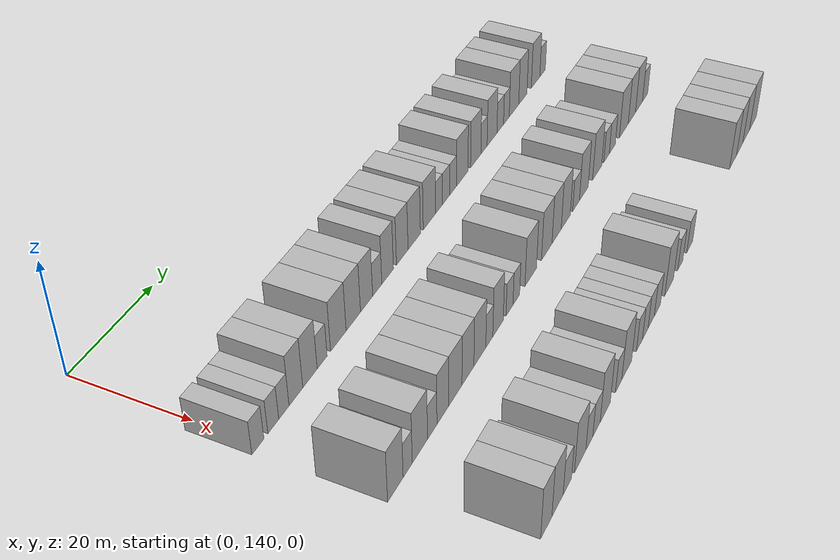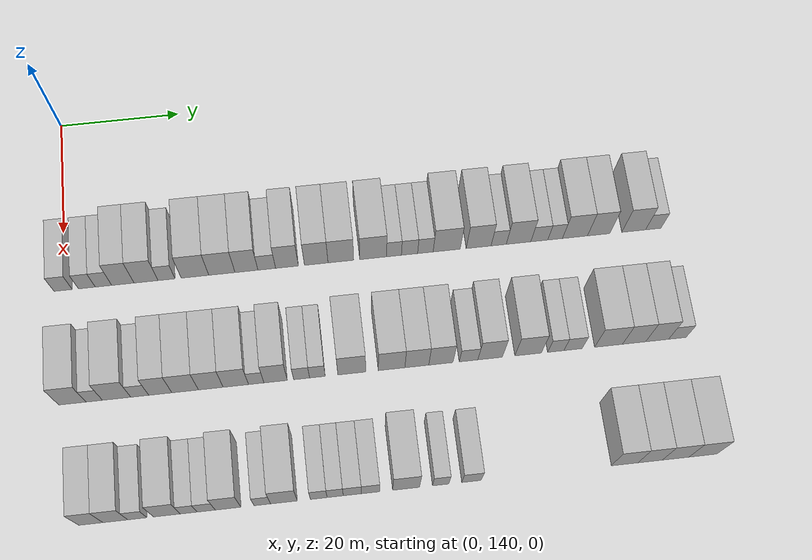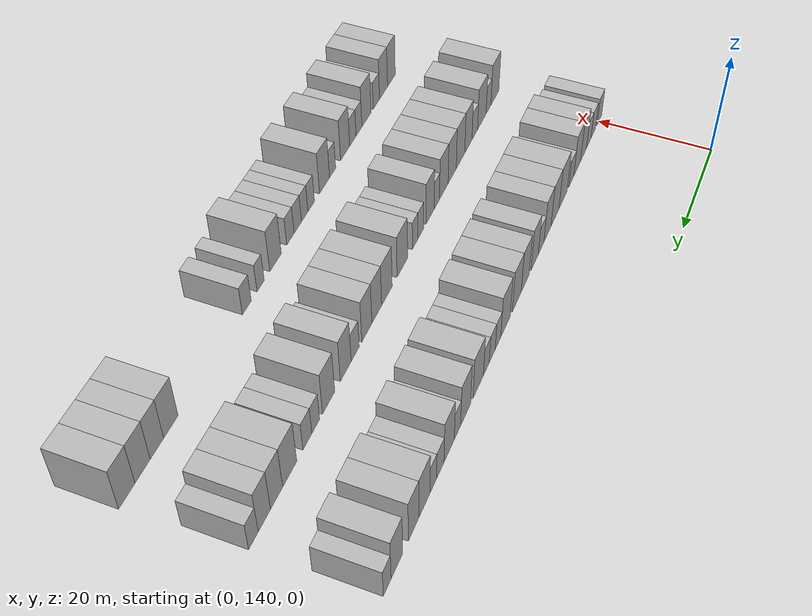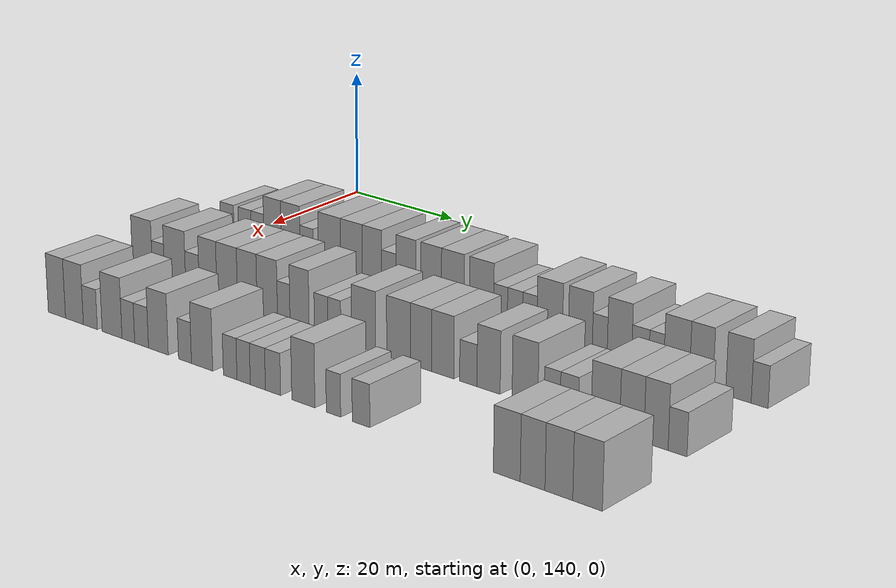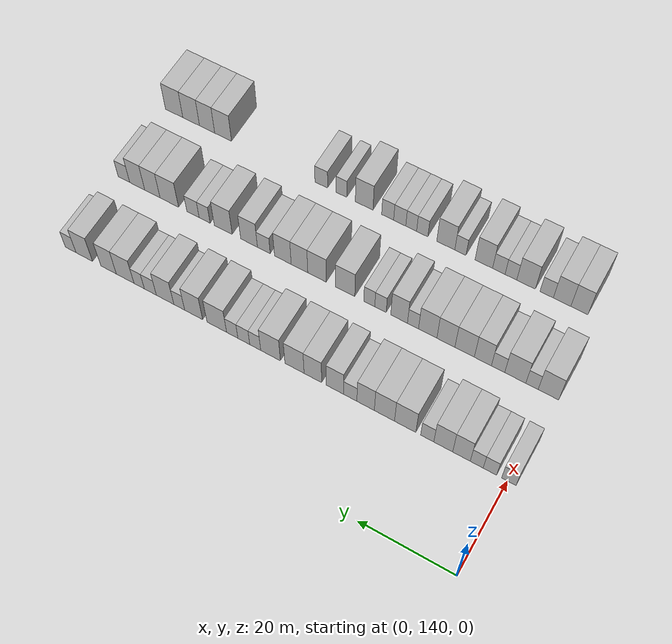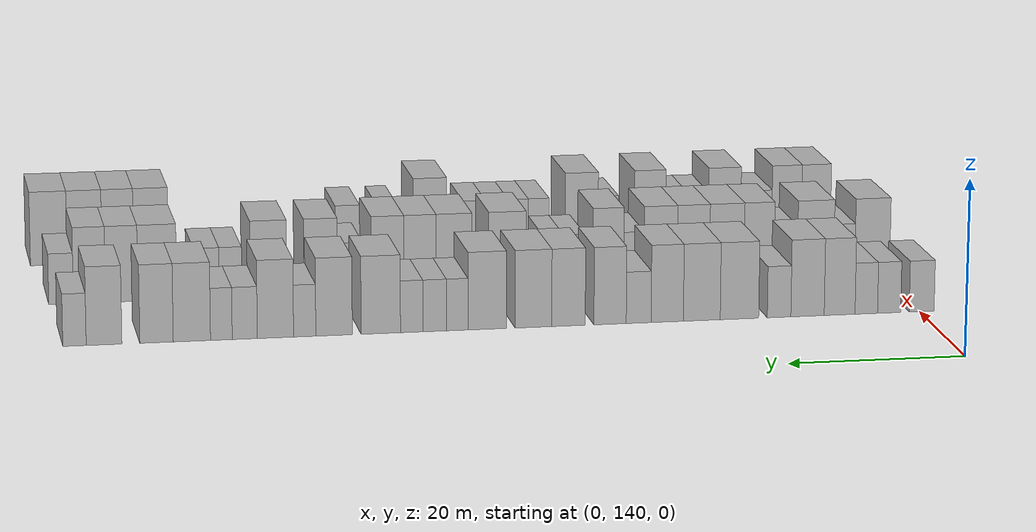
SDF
<sdf version="1.6">
 <world name="default">
  <model name="building_98">
   <static>1</static>
   <pose>25.0000 139.7400 0 0.000000 0.000000 0.000000</pose>
   <link name="link">
    <pose>0 0 3.00 0 0 0</pose>
    <collision name="collision"><geometry><box><size>10.0000 2.9340 6.0000</size></box></geometry></collision>
    <visual name="visual">
     <cast_shadows>0</cast_shadows>
     <geometry><box><size>10.0000 2.9340 6.0000</size></box></geometry>
     <material>
      <script>
       <uri>model://HANNAS_wall/materials/scripts</uri>
       <uri>model://HANNAS_wall/materials/textures</uri>
       <name>vrc/HANNAS_wall</name>
      </script>
     </material>
    </visual>
   </link>
  </model>
  <model name="building_99">
   <static>1</static>
   <pose>25.0000 143.5701 0 0.000000 0.000000 0.000000</pose>
   <link name="link">
    <pose>0 0 3.00 0 0 0</pose>
    <collision name="collision"><geometry><box><size>10.0000 2.7263 6.0000</size></box></geometry></collision>
    <visual name="visual">
     <cast_shadows>0</cast_shadows>
     <geometry><box><size>10.0000 2.7263 6.0000</size></box></geometry>
     <material>
      <script>
       <uri>model://HANNAS_wall/materials/scripts</uri>
       <uri>model://HANNAS_wall/materials/textures</uri>
       <name>vrc/HANNAS_wall</name>
      </script>
     </material>
    </visual>
   </link>
  </model>
  <model name="building_100">
   <static>1</static>
   <pose>25.0000 146.2547 0 0.000000 0.000000 0.000000</pose>
   <link name="link">
    <pose>0 0 3.00 0 0 0</pose>
    <collision name="collision"><geometry><box><size>10.0000 2.6428 6.0000</size></box></geometry></collision>
    <visual name="visual">
     <cast_shadows>0</cast_shadows>
     <geometry><box><size>10.0000 2.6428 6.0000</size></box></geometry>
     <material>
      <script>
       <uri>model://HANNAS_wall/materials/scripts</uri>
       <uri>model://HANNAS_wall/materials/textures</uri>
       <name>vrc/HANNAS_wall</name>
      </script>
     </material>
    </visual>
   </link>
  </model>
  <model name="building_101">
   <static>1</static>
   <pose>25.0000 149.3836 0 0.000000 0.000000 0.000000</pose>
   <link name="link">
    <pose>0 0 4.50 0 0 0</pose>
    <collision name="collision"><geometry><box><size>10.0000 3.6149 9.0000</size></box></geometry></collision>
    <visual name="visual">
     <cast_shadows>0</cast_shadows>
     <geometry><box><size>10.0000 3.6149 9.0000</size></box></geometry>
     <material>
      <script>
       <uri>model://HANNAS_wall/materials/scripts</uri>
       <uri>model://HANNAS_wall/materials/textures</uri>
       <name>vrc/HANNAS_wall</name>
      </script>
     </material>
    </visual>
   </link>
  </model>
  <model name="building_102">
   <static>1</static>
   <pose>25.0000 153.1405 0 0.000000 0.000000 0.000000</pose>
   <link name="link">
    <pose>0 0 4.50 0 0 0</pose>
    <collision name="collision"><geometry><box><size>10.0000 3.8989 9.0000</size></box></geometry></collision>
    <visual name="visual">
     <cast_shadows>0</cast_shadows>
     <geometry><box><size>10.0000 3.8989 9.0000</size></box></geometry>
     <material>
      <script>
       <uri>model://HANNAS_wall/materials/scripts</uri>
       <uri>model://HANNAS_wall/materials/textures</uri>
       <name>vrc/HANNAS_wall</name>
      </script>
     </material>
    </visual>
   </link>
  </model>
  <model name="building_103">
   <static>1</static>
   <pose>25.0000 156.4654 0 0.000000 0.000000 0.000000</pose>
   <link name="link">
    <pose>0 0 3.00 0 0 0</pose>
    <collision name="collision"><geometry><box><size>10.0000 2.7508 6.0000</size></box></geometry></collision>
    <visual name="visual">
     <cast_shadows>0</cast_shadows>
     <geometry><box><size>10.0000 2.7508 6.0000</size></box></geometry>
     <material>
      <script>
       <uri>model://HANNAS_wall/materials/scripts</uri>
       <uri>model://HANNAS_wall/materials/textures</uri>
       <name>vrc/HANNAS_wall</name>
      </script>
     </material>
    </visual>
   </link>
  </model>
  <model name="building_104">
   <static>1</static>
   <pose>25.0000 161.0789 0 0.000000 0.000000 0.000000</pose>
   <link name="link">
    <pose>0 0 4.50 0 0 0</pose>
    <collision name="collision"><geometry><box><size>10.0000 4.4762 9.0000</size></box></geometry></collision>
    <visual name="visual">
     <cast_shadows>0</cast_shadows>
     <geometry><box><size>10.0000 4.4762 9.0000</size></box></geometry>
     <material>
      <script>
       <uri>model://HANNAS_wall/materials/scripts</uri>
       <uri>model://HANNAS_wall/materials/textures</uri>
       <name>vrc/HANNAS_wall</name>
      </script>
     </material>
    </visual>
   </link>
  </model>
  <model name="building_105">
   <static>1</static>
   <pose>25.0000 165.4565 0 0.000000 0.000000 0.000000</pose>
   <link name="link">
    <pose>0 0 4.50 0 0 0</pose>
    <collision name="collision"><geometry><box><size>10.0000 4.2791 9.0000</size></box></geometry></collision>
    <visual name="visual">
     <cast_shadows>0</cast_shadows>
     <geometry><box><size>10.0000 4.2791 9.0000</size></box></geometry>
     <material>
      <script>
       <uri>model://HANNAS_wall/materials/scripts</uri>
       <uri>model://HANNAS_wall/materials/textures</uri>
       <name>vrc/HANNAS_wall</name>
      </script>
     </material>
    </visual>
   </link>
  </model>
  <model name="building_106">
   <static>1</static>
   <pose>25.0000 169.4659 0 0.000000 0.000000 0.000000</pose>
   <link name="link">
    <pose>0 0 4.50 0 0 0</pose>
    <collision name="collision"><geometry><box><size>10.0000 3.7397 9.0000</size></box></geometry></collision>
    <visual name="visual">
     <cast_shadows>0</cast_shadows>
     <geometry><box><size>10.0000 3.7397 9.0000</size></box></geometry>
     <material>
      <script>
       <uri>model://HANNAS_wall/materials/scripts</uri>
       <uri>model://HANNAS_wall/materials/textures</uri>
       <name>vrc/HANNAS_wall</name>
      </script>
     </material>
    </visual>
   </link>
  </model>
  <model name="building_107">
   <static>1</static>
   <pose>25.0000 172.7728 0 0.000000 0.000000 0.000000</pose>
   <link name="link">
    <pose>0 0 3.00 0 0 0</pose>
    <collision name="collision"><geometry><box><size>10.0000 2.8741 6.0000</size></box></geometry></collision>
    <visual name="visual">
     <cast_shadows>0</cast_shadows>
     <geometry><box><size>10.0000 2.8741 6.0000</size></box></geometry>
     <material>
      <script>
       <uri>model://HANNAS_wall/materials/scripts</uri>
       <uri>model://HANNAS_wall/materials/textures</uri>
       <name>vrc/HANNAS_wall</name>
      </script>
     </material>
    </visual>
   </link>
  </model>
  <model name="building_108">
   <static>1</static>
   <pose>25.0000 176.0724 0 0.000000 0.000000 0.000000</pose>
   <link name="link">
    <pose>0 0 4.50 0 0 0</pose>
    <collision name="collision"><geometry><box><size>10.0000 3.7249 9.0000</size></box></geometry></collision>
    <visual name="visual">
     <cast_shadows>0</cast_shadows>
     <geometry><box><size>10.0000 3.7249 9.0000</size></box></geometry>
     <material>
      <script>
       <uri>model://HANNAS_wall/materials/scripts</uri>
       <uri>model://HANNAS_wall/materials/textures</uri>
       <name>vrc/HANNAS_wall</name>
      </script>
     </material>
    </visual>
   </link>
  </model>
  <model name="building_109">
   <static>1</static>
   <pose>25.0000 180.8610 0 0.000000 0.000000 0.000000</pose>
   <link name="link">
    <pose>0 0 4.50 0 0 0</pose>
    <collision name="collision"><geometry><box><size>10.0000 3.8525 9.0000</size></box></geometry></collision>
    <visual name="visual">
     <cast_shadows>0</cast_shadows>
     <geometry><box><size>10.0000 3.8525 9.0000</size></box></geometry>
     <material>
      <script>
       <uri>model://HANNAS_wall/materials/scripts</uri>
       <uri>model://HANNAS_wall/materials/textures</uri>
       <name>vrc/HANNAS_wall</name>
      </script>
     </material>
    </visual>
   </link>
  </model>
  <model name="building_110">
   <static>1</static>
   <pose>25.0000 184.8941 0 0.000000 0.000000 0.000000</pose>
   <link name="link">
    <pose>0 0 4.50 0 0 0</pose>
    <collision name="collision"><geometry><box><size>10.0000 4.2136 9.0000</size></box></geometry></collision>
    <visual name="visual">
     <cast_shadows>0</cast_shadows>
     <geometry><box><size>10.0000 4.2136 9.0000</size></box></geometry>
     <material>
      <script>
       <uri>model://HANNAS_wall/materials/scripts</uri>
       <uri>model://HANNAS_wall/materials/textures</uri>
       <name>vrc/HANNAS_wall</name>
      </script>
     </material>
    </visual>
   </link>
  </model>
  <model name="building_111">
   <static>1</static>
   <pose>25.0000 190.1941 0 0.000000 0.000000 0.000000</pose>
   <link name="link">
    <pose>0 0 4.50 0 0 0</pose>
    <collision name="collision"><geometry><box><size>10.0000 4.3864 9.0000</size></box></geometry></collision>
    <visual name="visual">
     <cast_shadows>0</cast_shadows>
     <geometry><box><size>10.0000 4.3864 9.0000</size></box></geometry>
     <material>
      <script>
       <uri>model://HANNAS_wall/materials/scripts</uri>
       <uri>model://HANNAS_wall/materials/textures</uri>
       <name>vrc/HANNAS_wall</name>
      </script>
     </material>
    </visual>
   </link>
  </model>
  <model name="building_112">
   <static>1</static>
   <pose>25.0000 193.6153 0 0.000000 0.000000 0.000000</pose>
   <link name="link">
    <pose>0 0 3.00 0 0 0</pose>
    <collision name="collision"><geometry><box><size>10.0000 2.4560 6.0000</size></box></geometry></collision>
    <visual name="visual">
     <cast_shadows>0</cast_shadows>
     <geometry><box><size>10.0000 2.4560 6.0000</size></box></geometry>
     <material>
      <script>
       <uri>model://HANNAS_wall/materials/scripts</uri>
       <uri>model://HANNAS_wall/materials/textures</uri>
       <name>vrc/HANNAS_wall</name>
      </script>
     </material>
    </visual>
   </link>
  </model>
  <model name="building_113">
   <static>1</static>
   <pose>25.0000 196.1807 0 0.000000 0.000000 0.000000</pose>
   <link name="link">
    <pose>0 0 3.00 0 0 0</pose>
    <collision name="collision"><geometry><box><size>10.0000 2.6749 6.0000</size></box></geometry></collision>
    <visual name="visual">
     <cast_shadows>0</cast_shadows>
     <geometry><box><size>10.0000 2.6749 6.0000</size></box></geometry>
     <material>
      <script>
       <uri>model://HANNAS_wall/materials/scripts</uri>
       <uri>model://HANNAS_wall/materials/textures</uri>
       <name>vrc/HANNAS_wall</name>
      </script>
     </material>
    </visual>
   </link>
  </model>
  <model name="building_114">
   <static>1</static>
   <pose>25.0000 198.7943 0 0.000000 0.000000 0.000000</pose>
   <link name="link">
    <pose>0 0 3.00 0 0 0</pose>
    <collision name="collision"><geometry><box><size>10.0000 2.5523 6.0000</size></box></geometry></collision>
    <visual name="visual">
     <cast_shadows>0</cast_shadows>
     <geometry><box><size>10.0000 2.5523 6.0000</size></box></geometry>
     <material>
      <script>
       <uri>model://HANNAS_wall/materials/scripts</uri>
       <uri>model://HANNAS_wall/materials/textures</uri>
       <name>vrc/HANNAS_wall</name>
      </script>
     </material>
    </visual>
   </link>
  </model>
  <model name="building_115">
   <static>1</static>
   <pose>25.0000 202.3037 0 0.000000 0.000000 0.000000</pose>
   <link name="link">
    <pose>0 0 4.50 0 0 0</pose>
    <collision name="collision"><geometry><box><size>10.0000 4.4665 9.0000</size></box></geometry></collision>
    <visual name="visual">
     <cast_shadows>0</cast_shadows>
     <geometry><box><size>10.0000 4.4665 9.0000</size></box></geometry>
     <material>
      <script>
       <uri>model://HANNAS_wall/materials/scripts</uri>
       <uri>model://HANNAS_wall/materials/textures</uri>
       <name>vrc/HANNAS_wall</name>
      </script>
     </material>
    </visual>
   </link>
  </model>
  <model name="building_116">
   <static>1</static>
   <pose>25.0000 207.5986 0 0.000000 0.000000 0.000000</pose>
   <link name="link">
    <pose>0 0 4.50 0 0 0</pose>
    <collision name="collision"><geometry><box><size>10.0000 4.1233 9.0000</size></box></geometry></collision>
    <visual name="visual">
     <cast_shadows>0</cast_shadows>
     <geometry><box><size>10.0000 4.1233 9.0000</size></box></geometry>
     <material>
      <script>
       <uri>model://HANNAS_wall/materials/scripts</uri>
       <uri>model://HANNAS_wall/materials/textures</uri>
       <name>vrc/HANNAS_wall</name>
      </script>
     </material>
    </visual>
   </link>
  </model>
  <model name="building_117">
   <static>1</static>
   <pose>25.0000 210.9185 0 0.000000 0.000000 0.000000</pose>
   <link name="link">
    <pose>0 0 3.00 0 0 0</pose>
    <collision name="collision"><geometry><box><size>10.0000 2.5166 6.0000</size></box></geometry></collision>
    <visual name="visual">
     <cast_shadows>0</cast_shadows>
     <geometry><box><size>10.0000 2.5166 6.0000</size></box></geometry>
     <material>
      <script>
       <uri>model://HANNAS_wall/materials/scripts</uri>
       <uri>model://HANNAS_wall/materials/textures</uri>
       <name>vrc/HANNAS_wall</name>
      </script>
     </material>
    </visual>
   </link>
  </model>
  <model name="building_118">
   <static>1</static>
   <pose>25.0000 214.2165 0 0.000000 0.000000 0.000000</pose>
   <link name="link">
    <pose>0 0 4.50 0 0 0</pose>
    <collision name="collision"><geometry><box><size>10.0000 4.0793 9.0000</size></box></geometry></collision>
    <visual name="visual">
     <cast_shadows>0</cast_shadows>
     <geometry><box><size>10.0000 4.0793 9.0000</size></box></geometry>
     <material>
      <script>
       <uri>model://HANNAS_wall/materials/scripts</uri>
       <uri>model://HANNAS_wall/materials/textures</uri>
       <name>vrc/HANNAS_wall</name>
      </script>
     </material>
    </visual>
   </link>
  </model>
  <model name="building_119">
   <static>1</static>
   <pose>25.0000 217.6667 0 0.000000 0.000000 0.000000</pose>
   <link name="link">
    <pose>0 0 3.00 0 0 0</pose>
    <collision name="collision"><geometry><box><size>10.0000 2.8213 6.0000</size></box></geometry></collision>
    <visual name="visual">
     <cast_shadows>0</cast_shadows>
     <geometry><box><size>10.0000 2.8213 6.0000</size></box></geometry>
     <material>
      <script>
       <uri>model://HANNAS_wall/materials/scripts</uri>
       <uri>model://HANNAS_wall/materials/textures</uri>
       <name>vrc/HANNAS_wall</name>
      </script>
     </material>
    </visual>
   </link>
  </model>
  <model name="building_120">
   <static>1</static>
   <pose>25.0000 220.2971 0 0.000000 0.000000 0.000000</pose>
   <link name="link">
    <pose>0 0 3.00 0 0 0</pose>
    <collision name="collision"><geometry><box><size>10.0000 2.4394 6.0000</size></box></geometry></collision>
    <visual name="visual">
     <cast_shadows>0</cast_shadows>
     <geometry><box><size>10.0000 2.4394 6.0000</size></box></geometry>
     <material>
      <script>
       <uri>model://HANNAS_wall/materials/scripts</uri>
       <uri>model://HANNAS_wall/materials/textures</uri>
       <name>vrc/HANNAS_wall</name>
      </script>
     </material>
    </visual>
   </link>
  </model>
  <model name="building_121">
   <static>1</static>
   <pose>25.0000 223.6019 0 0.000000 0.000000 0.000000</pose>
   <link name="link">
    <pose>0 0 4.50 0 0 0</pose>
    <collision name="collision"><geometry><box><size>10.0000 4.1702 9.0000</size></box></geometry></collision>
    <visual name="visual">
     <cast_shadows>0</cast_shadows>
     <geometry><box><size>10.0000 4.1702 9.0000</size></box></geometry>
     <material>
      <script>
       <uri>model://HANNAS_wall/materials/scripts</uri>
       <uri>model://HANNAS_wall/materials/textures</uri>
       <name>vrc/HANNAS_wall</name>
      </script>
     </material>
    </visual>
   </link>
  </model>
  <model name="building_122">
   <static>1</static>
   <pose>25.0000 227.5534 0 0.000000 0.000000 0.000000</pose>
   <link name="link">
    <pose>0 0 4.50 0 0 0</pose>
    <collision name="collision"><geometry><box><size>10.0000 3.7329 9.0000</size></box></geometry></collision>
    <visual name="visual">
     <cast_shadows>0</cast_shadows>
     <geometry><box><size>10.0000 3.7329 9.0000</size></box></geometry>
     <material>
      <script>
       <uri>model://HANNAS_wall/materials/scripts</uri>
       <uri>model://HANNAS_wall/materials/textures</uri>
       <name>vrc/HANNAS_wall</name>
      </script>
     </material>
    </visual>
   </link>
  </model>
  <model name="building_123">
   <static>1</static>
   <pose>25.0000 233.4091 0 0.000000 0.000000 0.000000</pose>
   <link name="link">
    <pose>0 0 4.50 0 0 0</pose>
    <collision name="collision"><geometry><box><size>10.0000 3.9787 9.0000</size></box></geometry></collision>
    <visual name="visual">
     <cast_shadows>0</cast_shadows>
     <geometry><box><size>10.0000 3.9787 9.0000</size></box></geometry>
     <material>
      <script>
       <uri>model://HANNAS_wall/materials/scripts</uri>
       <uri>model://HANNAS_wall/materials/textures</uri>
       <name>vrc/HANNAS_wall</name>
      </script>
     </material>
    </visual>
   </link>
  </model>
  <model name="building_124">
   <static>1</static>
   <pose>25.0000 236.6980 0 0.000000 0.000000 0.000000</pose>
   <link name="link">
    <pose>0 0 3.00 0 0 0</pose>
    <collision name="collision"><geometry><box><size>10.0000 2.5991 6.0000</size></box></geometry></collision>
    <visual name="visual">
     <cast_shadows>0</cast_shadows>
     <geometry><box><size>10.0000 2.5991 6.0000</size></box></geometry>
     <material>
      <script>
       <uri>model://HANNAS_wall/materials/scripts</uri>
       <uri>model://HANNAS_wall/materials/textures</uri>
       <name>vrc/HANNAS_wall</name>
      </script>
     </material>
    </visual>
   </link>
  </model>
  <model name="building_223">
   <static>1</static>
   <pose>44.0000 140.7983 0 0.000000 0.000000 0.000000</pose>
   <link name="link">
    <pose>0 0 4.50 0 0 0</pose>
    <collision name="collision"><geometry><box><size>10.0000 4.2517 9.0000</size></box></geometry></collision>
    <visual name="visual">
     <cast_shadows>0</cast_shadows>
     <geometry><box><size>10.0000 4.2517 9.0000</size></box></geometry>
     <material>
      <script>
       <uri>model://HANNAS_wall/materials/scripts</uri>
       <uri>model://HANNAS_wall/materials/textures</uri>
       <name>vrc/HANNAS_wall</name>
      </script>
     </material>
    </visual>
   </link>
  </model>
  <model name="building_224">
   <static>1</static>
   <pose>44.0000 144.2056 0 0.000000 0.000000 0.000000</pose>
   <link name="link">
    <pose>0 0 3.00 0 0 0</pose>
    <collision name="collision"><geometry><box><size>10.0000 2.5628 6.0000</size></box></geometry></collision>
    <visual name="visual">
     <cast_shadows>0</cast_shadows>
     <geometry><box><size>10.0000 2.5628 6.0000</size></box></geometry>
     <material>
      <script>
       <uri>model://HANNAS_wall/materials/scripts</uri>
       <uri>model://HANNAS_wall/materials/textures</uri>
       <name>vrc/HANNAS_wall</name>
      </script>
     </material>
    </visual>
   </link>
  </model>
  <model name="building_225">
   <static>1</static>
   <pose>44.0000 147.6982 0 0.000000 0.000000 0.000000</pose>
   <link name="link">
    <pose>0 0 4.50 0 0 0</pose>
    <collision name="collision"><geometry><box><size>10.0000 4.4224 9.0000</size></box></geometry></collision>
    <visual name="visual">
     <cast_shadows>0</cast_shadows>
     <geometry><box><size>10.0000 4.4224 9.0000</size></box></geometry>
     <material>
      <script>
       <uri>model://HANNAS_wall/materials/scripts</uri>
       <uri>model://HANNAS_wall/materials/textures</uri>
       <name>vrc/HANNAS_wall</name>
      </script>
     </material>
    </visual>
   </link>
  </model>
  <model name="building_226">
   <static>1</static>
   <pose>44.0000 151.3155 0 0.000000 0.000000 0.000000</pose>
   <link name="link">
    <pose>0 0 3.00 0 0 0</pose>
    <collision name="collision"><geometry><box><size>10.0000 2.8123 6.0000</size></box></geometry></collision>
    <visual name="visual">
     <cast_shadows>0</cast_shadows>
     <geometry><box><size>10.0000 2.8123 6.0000</size></box></geometry>
     <material>
      <script>
       <uri>model://HANNAS_wall/materials/scripts</uri>
       <uri>model://HANNAS_wall/materials/textures</uri>
       <name>vrc/HANNAS_wall</name>
      </script>
     </material>
    </visual>
   </link>
  </model>
  <model name="building_227">
   <static>1</static>
   <pose>44.0000 154.5320 0 0.000000 0.000000 0.000000</pose>
   <link name="link">
    <pose>0 0 4.50 0 0 0</pose>
    <collision name="collision"><geometry><box><size>10.0000 3.6207 9.0000</size></box></geometry></collision>
    <visual name="visual">
     <cast_shadows>0</cast_shadows>
     <geometry><box><size>10.0000 3.6207 9.0000</size></box></geometry>
     <material>
      <script>
       <uri>model://HANNAS_wall/materials/scripts</uri>
       <uri>model://HANNAS_wall/materials/textures</uri>
       <name>vrc/HANNAS_wall</name>
      </script>
     </material>
    </visual>
   </link>
  </model>
  <model name="building_228">
   <static>1</static>
   <pose>44.0000 158.4226 0 0.000000 0.000000 0.000000</pose>
   <link name="link">
    <pose>0 0 4.50 0 0 0</pose>
    <collision name="collision"><geometry><box><size>10.0000 4.1604 9.0000</size></box></geometry></collision>
    <visual name="visual">
     <cast_shadows>0</cast_shadows>
     <geometry><box><size>10.0000 4.1604 9.0000</size></box></geometry>
     <material>
      <script>
       <uri>model://HANNAS_wall/materials/scripts</uri>
       <uri>model://HANNAS_wall/materials/textures</uri>
       <name>vrc/HANNAS_wall</name>
      </script>
     </material>
    </visual>
   </link>
  </model>
  <model name="building_229">
   <static>1</static>
   <pose>44.0000 162.4461 0 0.000000 0.000000 0.000000</pose>
   <link name="link">
    <pose>0 0 4.50 0 0 0</pose>
    <collision name="collision"><geometry><box><size>10.0000 3.8867 9.0000</size></box></geometry></collision>
    <visual name="visual">
     <cast_shadows>0</cast_shadows>
     <geometry><box><size>10.0000 3.8867 9.0000</size></box></geometry>
     <material>
      <script>
       <uri>model://HANNAS_wall/materials/scripts</uri>
       <uri>model://HANNAS_wall/materials/textures</uri>
       <name>vrc/HANNAS_wall</name>
      </script>
     </material>
    </visual>
   </link>
  </model>
  <model name="building_230">
   <static>1</static>
   <pose>44.0000 166.3868 0 0.000000 0.000000 0.000000</pose>
   <link name="link">
    <pose>0 0 4.50 0 0 0</pose>
    <collision name="collision"><geometry><box><size>10.0000 3.9946 9.0000</size></box></geometry></collision>
    <visual name="visual">
     <cast_shadows>0</cast_shadows>
     <geometry><box><size>10.0000 3.9946 9.0000</size></box></geometry>
     <material>
      <script>
       <uri>model://HANNAS_wall/materials/scripts</uri>
       <uri>model://HANNAS_wall/materials/textures</uri>
       <name>vrc/HANNAS_wall</name>
      </script>
     </material>
    </visual>
   </link>
  </model>
  <model name="building_231">
   <static>1</static>
   <pose>44.0000 169.5932 0 0.000000 0.000000 0.000000</pose>
   <link name="link">
    <pose>0 0 3.00 0 0 0</pose>
    <collision name="collision"><geometry><box><size>10.0000 2.4181 6.0000</size></box></geometry></collision>
    <visual name="visual">
     <cast_shadows>0</cast_shadows>
     <geometry><box><size>10.0000 2.4181 6.0000</size></box></geometry>
     <material>
      <script>
       <uri>model://HANNAS_wall/materials/scripts</uri>
       <uri>model://HANNAS_wall/materials/textures</uri>
       <name>vrc/HANNAS_wall</name>
      </script>
     </material>
    </visual>
   </link>
  </model>
  <model name="building_232">
   <static>1</static>
   <pose>44.0000 172.6456 0 0.000000 0.000000 0.000000</pose>
   <link name="link">
    <pose>0 0 4.50 0 0 0</pose>
    <collision name="collision"><geometry><box><size>10.0000 3.6867 9.0000</size></box></geometry></collision>
    <visual name="visual">
     <cast_shadows>0</cast_shadows>
     <geometry><box><size>10.0000 3.6867 9.0000</size></box></geometry>
     <material>
      <script>
       <uri>model://HANNAS_wall/materials/scripts</uri>
       <uri>model://HANNAS_wall/materials/textures</uri>
       <name>vrc/HANNAS_wall</name>
      </script>
     </material>
    </visual>
   </link>
  </model>
  <model name="building_233">
   <static>1</static>
   <pose>44.0000 176.7514 0 0.000000 0.000000 0.000000</pose>
   <link name="link">
    <pose>0 0 3.00 0 0 0</pose>
    <collision name="collision"><geometry><box><size>10.0000 2.5249 6.0000</size></box></geometry></collision>
    <visual name="visual">
     <cast_shadows>0</cast_shadows>
     <geometry><box><size>10.0000 2.5249 6.0000</size></box></geometry>
     <material>
      <script>
       <uri>model://HANNAS_wall/materials/scripts</uri>
       <uri>model://HANNAS_wall/materials/textures</uri>
       <name>vrc/HANNAS_wall</name>
      </script>
     </material>
    </visual>
   </link>
  </model>
  <model name="building_234">
   <static>1</static>
   <pose>44.0000 179.2437 0 0.000000 0.000000 0.000000</pose>
   <link name="link">
    <pose>0 0 3.00 0 0 0</pose>
    <collision name="collision"><geometry><box><size>10.0000 2.4596 6.0000</size></box></geometry></collision>
    <visual name="visual">
     <cast_shadows>0</cast_shadows>
     <geometry><box><size>10.0000 2.4596 6.0000</size></box></geometry>
     <material>
      <script>
       <uri>model://HANNAS_wall/materials/scripts</uri>
       <uri>model://HANNAS_wall/materials/textures</uri>
       <name>vrc/HANNAS_wall</name>
      </script>
     </material>
    </visual>
   </link>
  </model>
  <model name="building_235">
   <static>1</static>
   <pose>44.0000 184.6816 0 0.000000 0.000000 0.000000</pose>
   <link name="link">
    <pose>0 0 4.50 0 0 0</pose>
    <collision name="collision"><geometry><box><size>10.0000 4.4164 9.0000</size></box></geometry></collision>
    <visual name="visual">
     <cast_shadows>0</cast_shadows>
     <geometry><box><size>10.0000 4.4164 9.0000</size></box></geometry>
     <material>
      <script>
       <uri>model://HANNAS_wall/materials/scripts</uri>
       <uri>model://HANNAS_wall/materials/textures</uri>
       <name>vrc/HANNAS_wall</name>
      </script>
     </material>
    </visual>
   </link>
  </model>
  <model name="building_236">
   <static>1</static>
   <pose>44.0000 191.0047 0 0.000000 0.000000 0.000000</pose>
   <link name="link">
    <pose>0 0 4.50 0 0 0</pose>
    <collision name="collision"><geometry><box><size>10.0000 4.2298 9.0000</size></box></geometry></collision>
    <visual name="visual">
     <cast_shadows>0</cast_shadows>
     <geometry><box><size>10.0000 4.2298 9.0000</size></box></geometry>
     <material>
      <script>
       <uri>model://HANNAS_wall/materials/scripts</uri>
       <uri>model://HANNAS_wall/materials/textures</uri>
       <name>vrc/HANNAS_wall</name>
      </script>
     </material>
    </visual>
   </link>
  </model>
  <model name="building_237">
   <static>1</static>
   <pose>44.0000 195.0198 0 0.000000 0.000000 0.000000</pose>
   <link name="link">
    <pose>0 0 4.50 0 0 0</pose>
    <collision name="collision"><geometry><box><size>10.0000 3.8004 9.0000</size></box></geometry></collision>
    <visual name="visual">
     <cast_shadows>0</cast_shadows>
     <geometry><box><size>10.0000 3.8004 9.0000</size></box></geometry>
     <material>
      <script>
       <uri>model://HANNAS_wall/materials/scripts</uri>
       <uri>model://HANNAS_wall/materials/textures</uri>
       <name>vrc/HANNAS_wall</name>
      </script>
     </material>
    </visual>
   </link>
  </model>
  <model name="building_238">
   <static>1</static>
   <pose>44.0000 198.8469 0 0.000000 0.000000 0.000000</pose>
   <link name="link">
    <pose>0 0 4.50 0 0 0</pose>
    <collision name="collision"><geometry><box><size>10.0000 3.8537 9.0000</size></box></geometry></collision>
    <visual name="visual">
     <cast_shadows>0</cast_shadows>
     <geometry><box><size>10.0000 3.8537 9.0000</size></box></geometry>
     <material>
      <script>
       <uri>model://HANNAS_wall/materials/scripts</uri>
       <uri>model://HANNAS_wall/materials/textures</uri>
       <name>vrc/HANNAS_wall</name>
      </script>
     </material>
    </visual>
   </link>
  </model>
  <model name="building_239">
   <static>1</static>
   <pose>44.0000 203.2597 0 0.000000 0.000000 0.000000</pose>
   <link name="link">
    <pose>0 0 3.00 0 0 0</pose>
    <collision name="collision"><geometry><box><size>10.0000 2.9717 6.0000</size></box></geometry></collision>
    <visual name="visual">
     <cast_shadows>0</cast_shadows>
     <geometry><box><size>10.0000 2.9717 6.0000</size></box></geometry>
     <material>
      <script>
       <uri>model://HANNAS_wall/materials/scripts</uri>
       <uri>model://HANNAS_wall/materials/textures</uri>
       <name>vrc/HANNAS_wall</name>
      </script>
     </material>
    </visual>
   </link>
  </model>
  <model name="building_240">
   <static>1</static>
   <pose>44.0000 206.7092 0 0.000000 0.000000 0.000000</pose>
   <link name="link">
    <pose>0 0 4.50 0 0 0</pose>
    <collision name="collision"><geometry><box><size>10.0000 3.9274 9.0000</size></box></geometry></collision>
    <visual name="visual">
     <cast_shadows>0</cast_shadows>
     <geometry><box><size>10.0000 3.9274 9.0000</size></box></geometry>
     <material>
      <script>
       <uri>model://HANNAS_wall/materials/scripts</uri>
       <uri>model://HANNAS_wall/materials/textures</uri>
       <name>vrc/HANNAS_wall</name>
      </script>
     </material>
    </visual>
   </link>
  </model>
  <model name="building_241">
   <static>1</static>
   <pose>44.0000 212.7973 0 0.000000 0.000000 0.000000</pose>
   <link name="link">
    <pose>0 0 4.50 0 0 0</pose>
    <collision name="collision"><geometry><box><size>10.0000 4.2486 9.0000</size></box></geometry></collision>
    <visual name="visual">
     <cast_shadows>0</cast_shadows>
     <geometry><box><size>10.0000 4.2486 9.0000</size></box></geometry>
     <material>
      <script>
       <uri>model://HANNAS_wall/materials/scripts</uri>
       <uri>model://HANNAS_wall/materials/textures</uri>
       <name>vrc/HANNAS_wall</name>
      </script>
     </material>
    </visual>
   </link>
  </model>
  <model name="building_242">
   <static>1</static>
   <pose>44.0000 217.2324 0 0.000000 0.000000 0.000000</pose>
   <link name="link">
    <pose>0 0 3.00 0 0 0</pose>
    <collision name="collision"><geometry><box><size>10.0000 2.6215 6.0000</size></box></geometry></collision>
    <visual name="visual">
     <cast_shadows>0</cast_shadows>
     <geometry><box><size>10.0000 2.6215 6.0000</size></box></geometry>
     <material>
      <script>
       <uri>model://HANNAS_wall/materials/scripts</uri>
       <uri>model://HANNAS_wall/materials/textures</uri>
       <name>vrc/HANNAS_wall</name>
      </script>
     </material>
    </visual>
   </link>
  </model>
  <model name="building_243">
   <static>1</static>
   <pose>44.0000 220.0216 0 0.000000 0.000000 0.000000</pose>
   <link name="link">
    <pose>0 0 3.00 0 0 0</pose>
    <collision name="collision"><geometry><box><size>10.0000 2.9570 6.0000</size></box></geometry></collision>
    <visual name="visual">
     <cast_shadows>0</cast_shadows>
     <geometry><box><size>10.0000 2.9570 6.0000</size></box></geometry>
     <material>
      <script>
       <uri>model://HANNAS_wall/materials/scripts</uri>
       <uri>model://HANNAS_wall/materials/textures</uri>
       <name>vrc/HANNAS_wall</name>
      </script>
     </material>
    </visual>
   </link>
  </model>
  <model name="building_244">
   <static>1</static>
   <pose>44.0000 225.7481 0 0.000000 0.000000 0.000000</pose>
   <link name="link">
    <pose>0 0 4.50 0 0 0</pose>
    <collision name="collision"><geometry><box><size>10.0000 4.4961 9.0000</size></box></geometry></collision>
    <visual name="visual">
     <cast_shadows>0</cast_shadows>
     <geometry><box><size>10.0000 4.4961 9.0000</size></box></geometry>
     <material>
      <script>
       <uri>model://HANNAS_wall/materials/scripts</uri>
       <uri>model://HANNAS_wall/materials/textures</uri>
       <name>vrc/HANNAS_wall</name>
      </script>
     </material>
    </visual>
   </link>
  </model>
  <model name="building_245">
   <static>1</static>
   <pose>44.0000 229.8719 0 0.000000 0.000000 0.000000</pose>
   <link name="link">
    <pose>0 0 4.50 0 0 0</pose>
    <collision name="collision"><geometry><box><size>10.0000 3.7514 9.0000</size></box></geometry></collision>
    <visual name="visual">
     <cast_shadows>0</cast_shadows>
     <geometry><box><size>10.0000 3.7514 9.0000</size></box></geometry>
     <material>
      <script>
       <uri>model://HANNAS_wall/materials/scripts</uri>
       <uri>model://HANNAS_wall/materials/textures</uri>
       <name>vrc/HANNAS_wall</name>
      </script>
     </material>
    </visual>
   </link>
  </model>
  <model name="building_246">
   <static>1</static>
   <pose>44.0000 233.6017 0 0.000000 0.000000 0.000000</pose>
   <link name="link">
    <pose>0 0 4.50 0 0 0</pose>
    <collision name="collision"><geometry><box><size>10.0000 3.7083 9.0000</size></box></geometry></collision>
    <visual name="visual">
     <cast_shadows>0</cast_shadows>
     <geometry><box><size>10.0000 3.7083 9.0000</size></box></geometry>
     <material>
      <script>
       <uri>model://HANNAS_wall/materials/scripts</uri>
       <uri>model://HANNAS_wall/materials/textures</uri>
       <name>vrc/HANNAS_wall</name>
      </script>
     </material>
    </visual>
   </link>
  </model>
  <model name="building_247">
   <static>1</static>
   <pose>44.0000 236.8771 0 0.000000 0.000000 0.000000</pose>
   <link name="link">
    <pose>0 0 3.00 0 0 0</pose>
    <collision name="collision"><geometry><box><size>10.0000 2.8424 6.0000</size></box></geometry></collision>
    <visual name="visual">
     <cast_shadows>0</cast_shadows>
     <geometry><box><size>10.0000 2.8424 6.0000</size></box></geometry>
     <material>
      <script>
       <uri>model://HANNAS_wall/materials/scripts</uri>
       <uri>model://HANNAS_wall/materials/textures</uri>
       <name>vrc/HANNAS_wall</name>
      </script>
     </material>
    </visual>
   </link>
  </model>
  <model name="building_343">
   <static>1</static>
   <pose>63.0000 143.1299 0 0.000000 0.000000 0.000000</pose>
   <link name="link">
    <pose>0 0 4.50 0 0 0</pose>
    <collision name="collision"><geometry><box><size>10.0000 3.6329 9.0000</size></box></geometry></collision>
    <visual name="visual">
     <cast_shadows>0</cast_shadows>
     <geometry><box><size>10.0000 3.6329 9.0000</size></box></geometry>
     <material>
      <script>
       <uri>model://HANNAS_wall/materials/scripts</uri>
       <uri>model://HANNAS_wall/materials/textures</uri>
       <name>vrc/HANNAS_wall</name>
      </script>
     </material>
    </visual>
   </link>
  </model>
  <model name="building_344">
   <static>1</static>
   <pose>63.0000 146.8192 0 0.000000 0.000000 0.000000</pose>
   <link name="link">
    <pose>0 0 4.50 0 0 0</pose>
    <collision name="collision"><geometry><box><size>10.0000 3.7458 9.0000</size></box></geometry></collision>
    <visual name="visual">
     <cast_shadows>0</cast_shadows>
     <geometry><box><size>10.0000 3.7458 9.0000</size></box></geometry>
     <material>
      <script>
       <uri>model://HANNAS_wall/materials/scripts</uri>
       <uri>model://HANNAS_wall/materials/textures</uri>
       <name>vrc/HANNAS_wall</name>
      </script>
     </material>
    </visual>
   </link>
  </model>
  <model name="building_345">
   <static>1</static>
   <pose>63.0000 150.1347 0 0.000000 0.000000 0.000000</pose>
   <link name="link">
    <pose>0 0 3.00 0 0 0</pose>
    <collision name="collision"><geometry><box><size>10.0000 2.8851 6.0000</size></box></geometry></collision>
    <visual name="visual">
     <cast_shadows>0</cast_shadows>
     <geometry><box><size>10.0000 2.8851 6.0000</size></box></geometry>
     <material>
      <script>
       <uri>model://HANNAS_wall/materials/scripts</uri>
       <uri>model://HANNAS_wall/materials/textures</uri>
       <name>vrc/HANNAS_wall</name>
      </script>
     </material>
    </visual>
   </link>
  </model>
  <model name="building_346">
   <static>1</static>
   <pose>63.0000 154.5978 0 0.000000 0.000000 0.000000</pose>
   <link name="link">
    <pose>0 0 4.50 0 0 0</pose>
    <collision name="collision"><geometry><box><size>10.0000 4.0410 9.0000</size></box></geometry></collision>
    <visual name="visual">
     <cast_shadows>0</cast_shadows>
     <geometry><box><size>10.0000 4.0410 9.0000</size></box></geometry>
     <material>
      <script>
       <uri>model://HANNAS_wall/materials/scripts</uri>
       <uri>model://HANNAS_wall/materials/textures</uri>
       <name>vrc/HANNAS_wall</name>
      </script>
     </material>
    </visual>
   </link>
  </model>
  <model name="building_347">
   <static>1</static>
   <pose>63.0000 157.8934 0 0.000000 0.000000 0.000000</pose>
   <link name="link">
    <pose>0 0 3.00 0 0 0</pose>
    <collision name="collision"><geometry><box><size>10.0000 2.5502 6.0000</size></box></geometry></collision>
    <visual name="visual">
     <cast_shadows>0</cast_shadows>
     <geometry><box><size>10.0000 2.5502 6.0000</size></box></geometry>
     <material>
      <script>
       <uri>model://HANNAS_wall/materials/scripts</uri>
       <uri>model://HANNAS_wall/materials/textures</uri>
       <name>vrc/HANNAS_wall</name>
      </script>
     </material>
    </visual>
   </link>
  </model>
  <model name="building_348">
   <static>1</static>
   <pose>63.0000 160.5416 0 0.000000 0.000000 0.000000</pose>
   <link name="link">
    <pose>0 0 3.00 0 0 0</pose>
    <collision name="collision"><geometry><box><size>10.0000 2.7461 6.0000</size></box></geometry></collision>
    <visual name="visual">
     <cast_shadows>0</cast_shadows>
     <geometry><box><size>10.0000 2.7461 6.0000</size></box></geometry>
     <material>
      <script>
       <uri>model://HANNAS_wall/materials/scripts</uri>
       <uri>model://HANNAS_wall/materials/textures</uri>
       <name>vrc/HANNAS_wall</name>
      </script>
     </material>
    </visual>
   </link>
  </model>
  <model name="building_349">
   <static>1</static>
   <pose>63.0000 163.8618 0 0.000000 0.000000 0.000000</pose>
   <link name="link">
    <pose>0 0 4.50 0 0 0</pose>
    <collision name="collision"><geometry><box><size>10.0000 3.8944 9.0000</size></box></geometry></collision>
    <visual name="visual">
     <cast_shadows>0</cast_shadows>
     <geometry><box><size>10.0000 3.8944 9.0000</size></box></geometry>
     <material>
      <script>
       <uri>model://HANNAS_wall/materials/scripts</uri>
       <uri>model://HANNAS_wall/materials/textures</uri>
       <name>vrc/HANNAS_wall</name>
      </script>
     </material>
    </visual>
   </link>
  </model>
  <model name="building_350">
   <static>1</static>
   <pose>63.0000 169.0611 0 0.000000 0.000000 0.000000</pose>
   <link name="link">
    <pose>0 0 3.00 0 0 0</pose>
    <collision name="collision"><geometry><box><size>10.0000 2.5041 6.0000</size></box></geometry></collision>
    <visual name="visual">
     <cast_shadows>0</cast_shadows>
     <geometry><box><size>10.0000 2.5041 6.0000</size></box></geometry>
     <material>
      <script>
       <uri>model://HANNAS_wall/materials/scripts</uri>
       <uri>model://HANNAS_wall/materials/textures</uri>
       <name>vrc/HANNAS_wall</name>
      </script>
     </material>
    </visual>
   </link>
  </model>
  <model name="building_351">
   <static>1</static>
   <pose>63.0000 172.3442 0 0.000000 0.000000 0.000000</pose>
   <link name="link">
    <pose>0 0 4.50 0 0 0</pose>
    <collision name="collision"><geometry><box><size>10.0000 4.0620 9.0000</size></box></geometry></collision>
    <visual name="visual">
     <cast_shadows>0</cast_shadows>
     <geometry><box><size>10.0000 4.0620 9.0000</size></box></geometry>
     <material>
      <script>
       <uri>model://HANNAS_wall/materials/scripts</uri>
       <uri>model://HANNAS_wall/materials/textures</uri>
       <name>vrc/HANNAS_wall</name>
      </script>
     </material>
    </visual>
   </link>
  </model>
  <model name="building_352">
   <static>1</static>
   <pose>63.0000 177.6503 0 0.000000 0.000000 0.000000</pose>
   <link name="link">
    <pose>0 0 3.00 0 0 0</pose>
    <collision name="collision"><geometry><box><size>10.0000 2.5503 6.0000</size></box></geometry></collision>
    <visual name="visual">
     <cast_shadows>0</cast_shadows>
     <geometry><box><size>10.0000 2.5503 6.0000</size></box></geometry>
     <material>
      <script>
       <uri>model://HANNAS_wall/materials/scripts</uri>
       <uri>model://HANNAS_wall/materials/textures</uri>
       <name>vrc/HANNAS_wall</name>
      </script>
     </material>
    </visual>
   </link>
  </model>
  <model name="building_353">
   <static>1</static>
   <pose>63.0000 180.1575 0 0.000000 0.000000 0.000000</pose>
   <link name="link">
    <pose>0 0 3.00 0 0 0</pose>
    <collision name="collision"><geometry><box><size>10.0000 2.4639 6.0000</size></box></geometry></collision>
    <visual name="visual">
     <cast_shadows>0</cast_shadows>
     <geometry><box><size>10.0000 2.4639 6.0000</size></box></geometry>
     <material>
      <script>
       <uri>model://HANNAS_wall/materials/scripts</uri>
       <uri>model://HANNAS_wall/materials/textures</uri>
       <name>vrc/HANNAS_wall</name>
      </script>
     </material>
    </visual>
   </link>
  </model>
  <model name="building_354">
   <static>1</static>
   <pose>63.0000 182.7804 0 0.000000 0.000000 0.000000</pose>
   <link name="link">
    <pose>0 0 3.00 0 0 0</pose>
    <collision name="collision"><geometry><box><size>10.0000 2.7819 6.0000</size></box></geometry></collision>
    <visual name="visual">
     <cast_shadows>0</cast_shadows>
     <geometry><box><size>10.0000 2.7819 6.0000</size></box></geometry>
     <material>
      <script>
       <uri>model://HANNAS_wall/materials/scripts</uri>
       <uri>model://HANNAS_wall/materials/textures</uri>
       <name>vrc/HANNAS_wall</name>
      </script>
     </material>
    </visual>
   </link>
  </model>
  <model name="building_355">
   <static>1</static>
   <pose>63.0000 185.5543 0 0.000000 0.000000 0.000000</pose>
   <link name="link">
    <pose>0 0 3.00 0 0 0</pose>
    <collision name="collision"><geometry><box><size>10.0000 2.7660 6.0000</size></box></geometry></collision>
    <visual name="visual">
     <cast_shadows>0</cast_shadows>
     <geometry><box><size>10.0000 2.7660 6.0000</size></box></geometry>
     <material>
      <script>
       <uri>model://HANNAS_wall/materials/scripts</uri>
       <uri>model://HANNAS_wall/materials/textures</uri>
       <name>vrc/HANNAS_wall</name>
      </script>
     </material>
    </visual>
   </link>
  </model>
  <model name="building_356">
   <static>1</static>
   <pose>63.0000 190.9950 0 0.000000 0.000000 0.000000</pose>
   <link name="link">
    <pose>0 0 4.50 0 0 0</pose>
    <collision name="collision"><geometry><box><size>10.0000 4.1154 9.0000</size></box></geometry></collision>
    <visual name="visual">
     <cast_shadows>0</cast_shadows>
     <geometry><box><size>10.0000 4.1154 9.0000</size></box></geometry>
     <material>
      <script>
       <uri>model://HANNAS_wall/materials/scripts</uri>
       <uri>model://HANNAS_wall/materials/textures</uri>
       <name>vrc/HANNAS_wall</name>
      </script>
     </material>
    </visual>
   </link>
  </model>
  <model name="building_357">
   <static>1</static>
   <pose>63.0000 196.3041 0 0.000000 0.000000 0.000000</pose>
   <link name="link">
    <pose>0 0 3.00 0 0 0</pose>
    <collision name="collision"><geometry><box><size>10.0000 2.5029 6.0000</size></box></geometry></collision>
    <visual name="visual">
     <cast_shadows>0</cast_shadows>
     <geometry><box><size>10.0000 2.5029 6.0000</size></box></geometry>
     <material>
      <script>
       <uri>model://HANNAS_wall/materials/scripts</uri>
       <uri>model://HANNAS_wall/materials/textures</uri>
       <name>vrc/HANNAS_wall</name>
      </script>
     </material>
    </visual>
   </link>
  </model>
  <model name="building_358">
   <static>1</static>
   <pose>63.0000 201.0545 0 0.000000 0.000000 0.000000</pose>
   <link name="link">
    <pose>0 0 3.00 0 0 0</pose>
    <collision name="collision"><geometry><box><size>10.0000 2.9979 6.0000</size></box></geometry></collision>
    <visual name="visual">
     <cast_shadows>0</cast_shadows>
     <geometry><box><size>10.0000 2.9979 6.0000</size></box></geometry>
     <material>
      <script>
       <uri>model://HANNAS_wall/materials/scripts</uri>
       <uri>model://HANNAS_wall/materials/textures</uri>
       <name>vrc/HANNAS_wall</name>
      </script>
     </material>
    </visual>
   </link>
  </model>
  <model name="building_359">
   <static>1</static>
   <pose>63.0000 224.8024 0 0.000000 0.000000 0.000000</pose>
   <link name="link">
    <pose>0 0 4.50 0 0 0</pose>
    <collision name="collision"><geometry><box><size>10.0000 4.1659 9.0000</size></box></geometry></collision>
    <visual name="visual">
     <cast_shadows>0</cast_shadows>
     <geometry><box><size>10.0000 4.1659 9.0000</size></box></geometry>
     <material>
      <script>
       <uri>model://HANNAS_wall/materials/scripts</uri>
       <uri>model://HANNAS_wall/materials/textures</uri>
       <name>vrc/HANNAS_wall</name>
      </script>
     </material>
    </visual>
   </link>
  </model>
  <model name="building_360">
   <static>1</static>
   <pose>63.0000 228.7784 0 0.000000 0.000000 0.000000</pose>
   <link name="link">
    <pose>0 0 4.50 0 0 0</pose>
    <collision name="collision"><geometry><box><size>10.0000 3.7860 9.0000</size></box></geometry></collision>
    <visual name="visual">
     <cast_shadows>0</cast_shadows>
     <geometry><box><size>10.0000 3.7860 9.0000</size></box></geometry>
     <material>
      <script>
       <uri>model://HANNAS_wall/materials/scripts</uri>
       <uri>model://HANNAS_wall/materials/textures</uri>
       <name>vrc/HANNAS_wall</name>
      </script>
     </material>
    </visual>
   </link>
  </model>
  <model name="building_361">
   <static>1</static>
   <pose>63.0000 232.7591 0 0.000000 0.000000 0.000000</pose>
   <link name="link">
    <pose>0 0 4.50 0 0 0</pose>
    <collision name="collision"><geometry><box><size>10.0000 4.1755 9.0000</size></box></geometry></collision>
    <visual name="visual">
     <cast_shadows>0</cast_shadows>
     <geometry><box><size>10.0000 4.1755 9.0000</size></box></geometry>
     <material>
      <script>
       <uri>model://HANNAS_wall/materials/scripts</uri>
       <uri>model://HANNAS_wall/materials/textures</uri>
       <name>vrc/HANNAS_wall</name>
      </script>
     </material>
    </visual>
   </link>
  </model>
  <model name="building_362">
   <static>1</static>
   <pose>63.0000 237.0331 0 0.000000 0.000000 0.000000</pose>
   <link name="link">
    <pose>0 0 4.50 0 0 0</pose>
    <collision name="collision"><geometry><box><size>10.0000 4.3725 9.0000</size></box></geometry></collision>
    <visual name="visual">
     <cast_shadows>0</cast_shadows>
     <geometry><box><size>10.0000 4.3725 9.0000</size></box></geometry>
     <material>
      <script>
       <uri>model://HANNAS_wall/materials/scripts</uri>
       <uri>model://HANNAS_wall/materials/textures</uri>
       <name>vrc/HANNAS_wall</name>
      </script>
     </material>
    </visual>
   </link>
  </model>
 </world>
</sdf>
